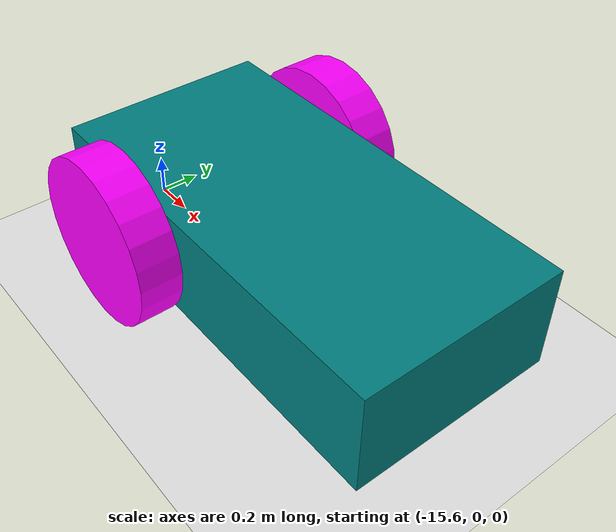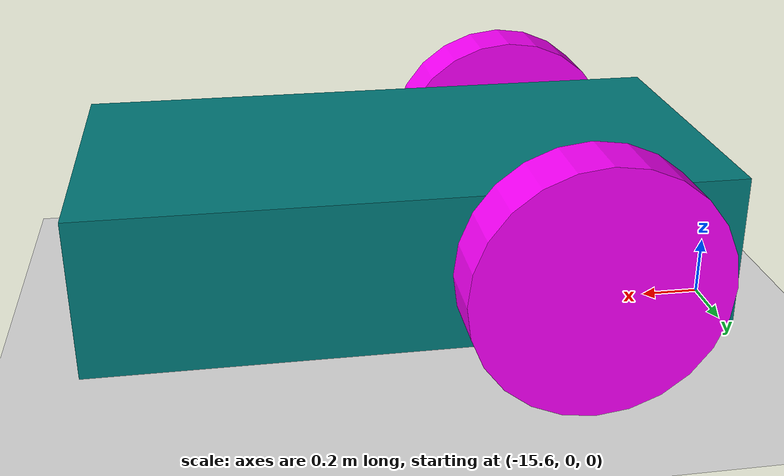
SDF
<?xml version="1.0" ?>
<sdf version="1.8">
    <world name="car_world">
        <physics name="1ms" type="ignored">
            <max_step_size>0.001</max_step_size>
            <real_time_factor>1.0</real_time_factor>
        </physics>
        <plugin
            filename="libignition-gazebo-physics-system.so"
            name="ignition::gazebo::systems::Physics">
        </plugin>
        <plugin
            filename="libignition-gazebo-user-commands-system.so"
            name="ignition::gazebo::systems::UserCommands">
        </plugin>
        <plugin
            filename="libignition-gazebo-scene-broadcaster-system.so"
            name="ignition::gazebo::systems::SceneBroadcaster">
        </plugin>
        <plugin filename="libignition-gazebo-imu-system.so"
            name="ignition::gazebo::systems::Imu">
        </plugin>
        <plugin
        filename="libignition-gazebo-sensors-system.so"
        name="ignition::gazebo::systems::Sensors">
        <render_engine>ogre2</render_engine>
        </plugin>
        <light type="directional" name="sun">
            <cast_shadows>true</cast_shadows>
            <pose>0 0 10 0 0 0</pose>
            <diffuse>0.8 0.8 0.8 1</diffuse>
            <specular>0.2 0.2 0.2 1</specular>
            <attenuation>
                <range>1000</range>
                <constant>0.9</constant>
                <linear>0.01</linear>
                <quadratic>0.001</quadratic>
            </attenuation>
            <direction>-0.5 0.1 -0.9</direction>
        </light>

        <model name="ground_plane">
            <static>true</static>
            <link name="link">
                <collision name="collision">
                <geometry>
                    <plane>
                    <normal>0 0 1</normal>
                    </plane>
                </geometry>
                </collision>
                <visual name="visual">
                <geometry>
                    <plane>
                    <normal>0 0 1</normal>
                    <size>100 100</size>
                    </plane>
                </geometry>
                <material>
                    <ambient>0.9 0.9 0.9 1</ambient>
                    <diffuse>0.9 0.9 0.9 1</diffuse>
                    <specular>0.9 0.9 0.9 1</specular>
                </material>
                </visual>
            </link>
            <link name="left_wall">
                <pose relative_to='__model__'>0 20.0 1 0 0 0</pose>
                <visual name='visual'>
                    <geometry>
                        <box>
                            <size>40 0.50 2</size>
                        </box>
                    </geometry>
                    <!--let's add color to our link-->
                    <material>
                        <ambient>0.8 0.5 0.3 1</ambient>
                        <diffuse>0.8 0.5 0.3 1</diffuse>
                        <specular>0.8 0.5 0.3 1</specular>
                    </material>
                </visual>
                <collision name='collision'>
                    <geometry>
                        <box>
                            <size>40 0.50 2</size>
                        </box>
                    </geometry>
                </collision>
            </link>
            <joint name='left_wall_joint' type='fixed'>
                <pose relative_to='left_wall'/>
                <parent>link</parent>
                <child>left_wall</child>
            </joint>
             <link name="right_wall">
                <pose relative_to='__model__'>0 -20.0 1 0 0 0</pose>
                <visual name='visual'>
                    <geometry>
                        <box>
                            <size>40 0.50 2</size>
                        </box>
                    </geometry>
                    <!--let's add color to our link-->
                    <material>
                        <ambient>0.8 0.5 0.3 1</ambient>
                        <diffuse>0.8 0.5 0.3 1</diffuse>
                        <specular>0.8 0.5 0.3 1</specular>
                    </material>
                </visual>
                <collision name='collision'>
                    <geometry>
                        <box>
                            <size>40 0.50 2</size>
                        </box>
                    </geometry>
                </collision>
            </link>
            <joint name='right_wall_joint' type='fixed'>
                <pose relative_to='right_wall'/>
                <parent>link</parent>
                <child>right_wall</child>
            </joint>
            <link name="front_wall">
                <pose relative_to='__model__'>20 0.0 1 0 0 1.5707</pose>
                <visual name='visual'>
                    <geometry>
                        <box>
                            <size>40 0.50 2</size>
                        </box>
                    </geometry>
                    <!--let's add color to our link-->
                    <material>
                        <ambient>0.8 0.5 0.3 1</ambient>
                        <diffuse>0.8 0.5 0.3 1</diffuse>
                        <specular>0.8 0.5 0.3 1</specular>
                    </material>
                </visual>
                <collision name='collision'>
                    <geometry>
                        <box>
                            <size>40 0.50 2</size>
                        </box>
                    </geometry>
                </collision>
            </link>
            <joint name='front_wall_joint' type='fixed'>
                <pose relative_to='front_wall'/>
                <parent>link</parent>
                <child>front_wall</child>
            </joint>
            <link name="rear_wall">
                <pose relative_to='__model__'>-20 0.0 1 0 0 1.5707</pose>
                <visual name='visual'>
                    <geometry>
                        <box>
                            <size>40 0.50 2</size>
                        </box>
                    </geometry>
                    <!--let's add color to our link-->
                    <material>
                        <ambient>0.8 0.5 0.3 1</ambient>
                        <diffuse>0.8 0.5 0.3 1</diffuse>
                        <specular>0.8 0.5 0.3 1</specular>
                    </material>
                </visual>
                <collision name='collision'>
                    <geometry>
                        <box>
                            <size>40 0.50 2</size>
                        </box>
                    </geometry>
                </collision>
            </link>
            <joint name='rear_wall_joint' type='fixed'>
                <pose relative_to='rear_wall'/>
                <parent>link</parent>
                <child>rear_wall</child>
            </joint>
        </model>
        <model name='my_robot' canonical_link='chassis'>
            <pose relative_to='world'>-15 0 0 0 0 0</pose>
                <link name='chassis'>
                <pose relative_to='__model__'>0.5 0 0.4 0 0 0</pose>
                <inertial> <!--inertial properties of the link mass, inertia matix-->
                    <mass>1.14395</mass>
                    <inertia>
                        <ixx>0.095329</ixx>
                        <ixy>0</ixy>
                        <ixz>0</ixz>
                        <iyy>0.381317</iyy>
                        <iyz>0</iyz>
                        <izz>0.476646</izz>
                    </inertia>
                </inertial>
                <visual name='visual'>
                    <geometry>
                        <box>
                            <size>2.0 1.0 0.5</size>
                        </box>
                    </geometry>
                    <!--let's add color to our link-->
                    <material>
                        <ambient>0.0 0.5 0.5 1</ambient>
                        <diffuse>0.0 0.5 0.5 1</diffuse>
                        <specular>0.0 0.5 0.5 1</specular>
                    </material>
                </visual>
                <collision name='collision'>
                    <geometry>
                        <box>
                            <size>2.0 1.0 0.5</size>
                        </box>
                    </geometry>
                </collision>
                <sensor name="imu_sensor" type="imu">
                    <always_on>1</always_on>
                    <update_rate>1</update_rate>
                    <visualize>true</visualize>
                    <topic>imu</topic>
                </sensor>
                <sensor name='gpu_lidar' type='gpu_lidar'>"
                    <pose relative_to='lidar_frame'>0 0 0 0 0 0</pose>
                    <topic>lidar</topic>
                    <update_rate>10</update_rate>
                    <ray>
                        <scan>
                            <horizontal>
                                <samples>640</samples>
                                <resolution>1</resolution>
                                <min_angle>-1.396263</min_angle>
                                <max_angle>1.396263</max_angle>
                            </horizontal>
                            <vertical>
                                <samples>1</samples>
                                <resolution>0.01</resolution>
                                <min_angle>0</min_angle>
                                <max_angle>0</max_angle>
                            </vertical>
                        </scan>
                        <range>
                            <min>0.08</min>
                            <max>25.0</max>
                            <resolution>0.01</resolution>
                        </range>
                    </ray>
                    <always_on>1</always_on>
                    <visualize>true</visualize>
                </sensor>
            </link>
            <link name='left_wheel'>
                <pose relative_to="chassis">-0.5 0.6 0 -1.5707 0 0</pose>
                <inertial>
                    <mass>1</mass>
                    <inertia>
                        <ixx>0.043333</ixx>
                        <ixy>0</ixy>
                        <ixz>0</ixz>
                        <iyy>0.043333</iyy>
                        <iyz>0</iyz>
                        <izz>0.08</izz>
                    </inertia>
                </inertial>
                <visual name='visual'>
                    <geometry>
                        <cylinder>
                            <radius>0.4</radius>
                            <length>0.2</length>
                        </cylinder>
                    </geometry>
                    <material>
                        <ambient>1.0 0.0 1.0 1</ambient>
                        <diffuse>1.0 0.0 1.0 1</diffuse>
                        <specular>1.0 0.0 1.0 1</specular>
                    </material>
                </visual>
                <collision name='collision'>
                    <geometry>
                        <cylinder>
                            <radius>0.4</radius>
                            <length>0.2</length>
                        </cylinder>
                    </geometry>
                </collision>
            </link>
            <link name='right_wheel'>
                <pose relative_to="chassis">-0.5 -0.6 0 -1.5707 0 0</pose> <!--angles are in radian-->
                <inertial>
                    <mass>1</mass>
                    <inertia>
                        <ixx>0.043333</ixx>
                        <ixy>0</ixy>
                        <ixz>0</ixz>
                        <iyy>0.043333</iyy>
                        <iyz>0</iyz>
                        <izz>0.08</izz>
                    </inertia>
                </inertial>
                <visual name='visual'>
                    <geometry>
                        <cylinder>
                            <radius>0.4</radius>
                            <length>0.2</length>
                        </cylinder>
                    </geometry>
                    <material>
                        <ambient>1.0 0.0 1.0 1</ambient>
                        <diffuse>1.0 0.0 1.0 1</diffuse>
                        <specular>1.0 0.0 1.0 1</specular>
                    </material>
                </visual>
                <collision name='collision'>
                    <geometry>
                        <cylinder>
                            <radius>0.4</radius>
                            <length>0.2</length>
                        </cylinder>
                    </geometry>
                </collision>
            </link>
            <frame name="caster_frame" attached_to='chassis'>
                <pose>0.8 0 -0.2 0 0 0</pose>
            </frame>
            <link name='caster'>
                <pose relative_to='caster_frame'/>
                <inertial>
                    <mass>1</mass>
                    <inertia>
                        <ixx>0.016</ixx>
                        <ixy>0</ixy>
                        <ixz>0</ixz>
                        <iyy>0.016</iyy>
                        <iyz>0</iyz>
                        <izz>0.016</izz>
                    </inertia>
                </inertial>
                <visual name='visual'>
                    <geometry>
                        <sphere>
                            <radius>0.2</radius>
                        </sphere>
                    </geometry>
                    <material>
                        <ambient>1.0 1 0.0 1</ambient>
                        <diffuse>1.0 1 0.0 1</diffuse>
                        <specular>1.0 1 0.0 1</specular>
                    </material>
                </visual>
                <collision name='collision'>
                    <geometry>
                        <sphere>
                            <radius>0.2</radius>
                        </sphere>
                    </geometry>
                </collision>
            </link>
            <joint name='left_wheel_joint' type='revolute'>
                <pose relative_to='left_wheel'/>
                <parent>chassis</parent>
                <child>left_wheel</child>
                <axis>
                    <xyz expressed_in='__model__'>0 1 0</xyz> <!--can be defined as any frame or even arbitrary frames-->
                    <limit>
                        <lower>-1.79769e+308</lower>    <!--negative infinity-->
                        <upper>1.79769e+308</upper>     <!--positive infinity-->
                    </limit>
                </axis>
            </joint>
            <joint name='right_wheel_joint' type='revolute'>
                <pose relative_to='right_wheel'/>
                <parent>chassis</parent>
                <child>right_wheel</child>
                <axis>
                    <xyz expressed_in='__model__'>0 1 0</xyz>
                    <limit>
                        <lower>-1.79769e+308</lower>    <!--negative infinity-->
                        <upper>1.79769e+308</upper>     <!--positive infinity-->
                    </limit>
                </axis>
            </joint>
            <joint name='caster_wheel' type='ball'>
                <parent>chassis</parent>
                <child>caster</child>
            </joint>
            <frame name="lidar_frame" attached_to='chassis'>
                <pose>0.8 0 0.5 0 0 0</pose>
            </frame>
            <plugin
                filename="libignition-gazebo-diff-drive-system.so"
                name="ignition::gazebo::systems::DiffDrive">
                <left_joint>left_wheel_joint</left_joint>
                <right_joint>right_wheel_joint</right_joint>
                <wheel_separation>1.2</wheel_separation>
                <wheel_radius>0.4</wheel_radius>
                <odom_publish_frequency>1</odom_publish_frequency>
                <topic>cmd_vel</topic>
            </plugin>
            <plugin filename="libignition-gazebo-triggered-publisher-system.so"
                    name="ignition::gazebo::systems::TriggeredPublisher">
                <input type="ignition.msgs.Int32" topic="/keyboard/keypress">
                    <match field="data">87</match>
                </input>
                <output type="ignition.msgs.Twist" topic="/cmd_vel">
                    linear: {x: 2.0}, angular: {z: 0.0}
                </output>
            </plugin>
                        <plugin filename="libignition-gazebo-triggered-publisher-system.so"
                    name="ignition::gazebo::systems::TriggeredPublisher">
                <input type="ignition.msgs.Int32" topic="/keyboard/keypress">
                    <match field="data">83</match>
                </input>
                <output type="ignition.msgs.Twist" topic="/cmd_vel">
                    linear: {x: -1.0}, angular: {z: 0.0}
                </output>
            </plugin>
                        <plugin filename="libignition-gazebo-triggered-publisher-system.so"
                    name="ignition::gazebo::systems::TriggeredPublisher">
                <input type="ignition.msgs.Int32" topic="/keyboard/keypress">
                    <match field="data">65</match>
                </input>
                <output type="ignition.msgs.Twist" topic="/cmd_vel">
                    linear: {x: 0.0}, angular: {z: 0.5}
                </output>
            </plugin>
                        <plugin filename="libignition-gazebo-triggered-publisher-system.so"
                    name="ignition::gazebo::systems::TriggeredPublisher">
                <input type="ignition.msgs.Int32" topic="/keyboard/keypress">
                    <match field="data">68</match>
                </input>
                <output type="ignition.msgs.Twist" topic="/cmd_vel">
                    linear: {x: 0.0}, angular: {z: -0.5}
                </output>
            </plugin>
        </model>
    </world>
</sdf>
